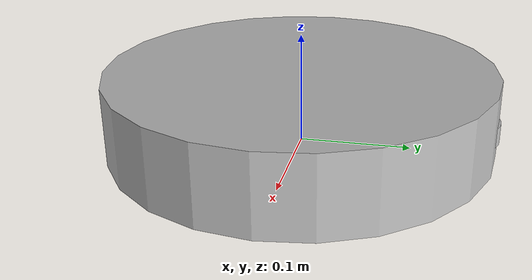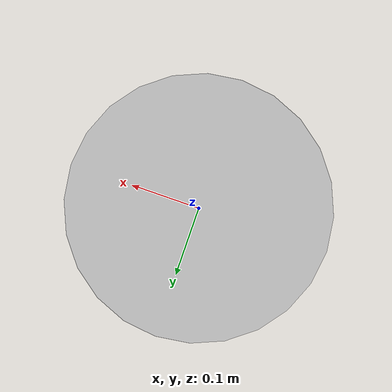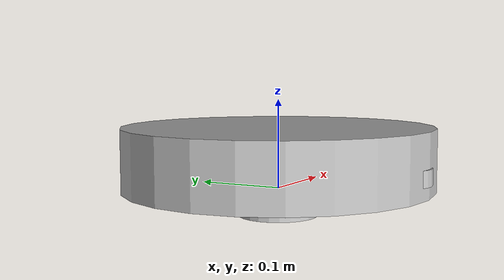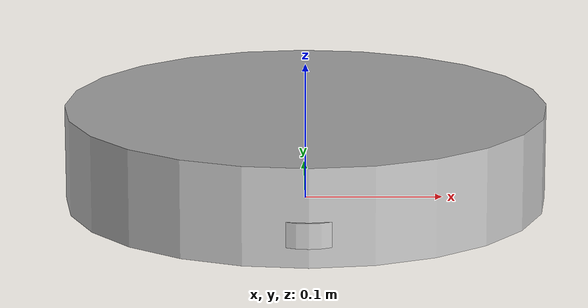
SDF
<?xml version="1.0" ?>
<sdf version="1.5">
  <model name="cleanpack">
  <!--
  *************************************************************************

        Base

  *************************************************************************
  -->
    <link name="base">
      <visual>
        <pose>0 0 0.035 0 0 0</pose>
        <geometry>
          <cylinder>
            <radius>0.175</radius>
            <length>0.07</length>
          </cylinder>
        </geometry>
      </visual>

      <collision name="base_collision">
        <pose>0 0 0.035 0 0 0</pose>
        <geometry>
          <cylinder>
            <radius>0.175</radius>
            <length>0.07</length>
          </cylinder>
        </geometry>
      </collision>

      <inertial>
        <pose>0 0 0 0 0 0</pose>
        <mass>0.8</mass>
        <inertia>
          <ixx>0.001</ixx>
          <ixy>0.000</ixy>
          <ixz>0.000</ixz>
          <iyy>0.001</iyy>
          <iyz>0.000</iyz>
          <izz>0.001</izz>
        </inertia>
      </inertial>

      <plugin name="model_push" filename="libmodel_push.so"/>
    </link>
    <!--
    *************************************************************************

          Lidar

    *************************************************************************
    -->

    <link name="lidar">
      <visual>
        <pose>0 0 -0.015 0 0 0</pose>
        <geometry>
          <cylinder>
            <radius>0.045</radius>
            <length>0.0315</length>
          </cylinder>
        </geometry>
        <material>dark</material>
      </visual>
      <collision>
        <pose>0 0 -0.015 0 0 0</pose>
        <geometry>
          <cylinder>
            <radius>0.045</radius>
            <length>0.0315</length>
          </cylinder>
        </geometry>
      </collision>

      <inertial>
        <mass>0.0001</mass>
        <pose>0 0 0 0 0 0</pose>
        <inertia>
          <ixx>0.001</ixx>
          <ixy>0.000</ixy>
          <ixz>0.000</ixz>
          <iyy>0.001</iyy>
          <iyz>0.000</iyz>
          <izz>0.001</izz>
        </inertia>
      </inertial>
    </link>
    <joint name="lidar_joint" type="fixed">
      <parent>base</parent>
      <child>lidar</child>
      <pose>-0.064 0 0.121 0 0 0</pose>
      <axis>
        <xyz>0 0 1</xyz>
        <use_parent_model_frame>true</use_parent_model_frame>
      </axis>
    </joint>
    <!--
    *************************************************************************

          Wheel

    *************************************************************************
    -->
    <link name="left_wheel">

      <inertial>
        <pose>0 0 0 0 0 0</pose>
        <inertia>
          <ixx>0.001</ixx>
          <ixy>0.000</ixy>
          <ixz>0.000</ixz>
          <iyy>0.001</iyy>
          <iyz>0.000</iyz>
          <izz>0.001</izz>
        </inertia>
        <mass>0.1</mass>
      </inertial>

      <collision name="left_wheel_collision">
        <pose>0.0 0.144 0.023 -1.57 0 0</pose>
        <geometry>
          <cylinder>
            <radius>0.033</radius>
            <length>0.018</length>
          </cylinder>
        </geometry>
          <surface>
            <friction>
              <ode>
                <mu>100000.0</mu>
                <mu2>100000.0</mu2>
                <fdir1>0 0 0</fdir1>
                <slip1>0.0</slip1>
                <slip2>0.0</slip2>
              </ode>
          </friction>
        </surface>
      </collision>

      <visual name="left_wheel_visual">
        <pose>0.0 0.144 0.023 0 0 0</pose>
        <geometry>
          <cylinder>
            <radius>0.033</radius>
            <length>0.018</length>
          </cylinder>
        </geometry>
      </visual>
    </link>

    <link name="right_wheel">

      <inertial>
        <pose>0.0 -0.144 0.023 -1.57 0 0</pose>
        <inertia>
          <ixx>0.001</ixx>
          <ixy>0.000</ixy>
          <ixz>0.000</ixz>
          <iyy>0.001</iyy>
          <iyz>0.000</iyz>
          <izz>0.001</izz>
        </inertia>
        <mass>0.1</mass>
      </inertial>

      <collision name="right_wheel_collision">
        <pose>0.0 -0.144 0.023 -1.57 0 0</pose>
        <geometry>
          <cylinder>
            <radius>0.033</radius>
            <length>0.018</length>
          </cylinder>
        </geometry>
          <surface>
            <friction>
              <ode>
                <mu>100000.0</mu>
                <mu2>100000.0</mu2>
                <fdir1>0 0 0</fdir1>
                <slip1>0.0</slip1>
                <slip2>0.0</slip2>
              </ode>
          </friction>
        </surface>
      </collision>

      <visual name="right_wheel_visual">
        <pose>0.0 -0.144 0.023 0 0 0</pose>
        <geometry>
          <cylinder>
            <radius>0.033</radius>
            <length>0.018</length>
          </cylinder>
        </geometry>
      </visual>
    </link>

    <joint name="left_wheel_joint" type="revolute">
      <parent>base</parent>
      <child>left_wheel</child>
      <pose>0.0 0.144 0.023 -1.57 0 0</pose>
      <axis>
        <xyz>0 1 0</xyz>
      </axis>
    </joint>

    <joint name="right_wheel_joint" type="revolute">
      <parent>base</parent>
      <child>right_wheel</child>
      <pose>0.0 -0.144 0.023 -1.57 0 0</pose>
      <axis>
        <xyz>0 1 0</xyz>
      </axis>
    </joint>

  </model>
</sdf>
